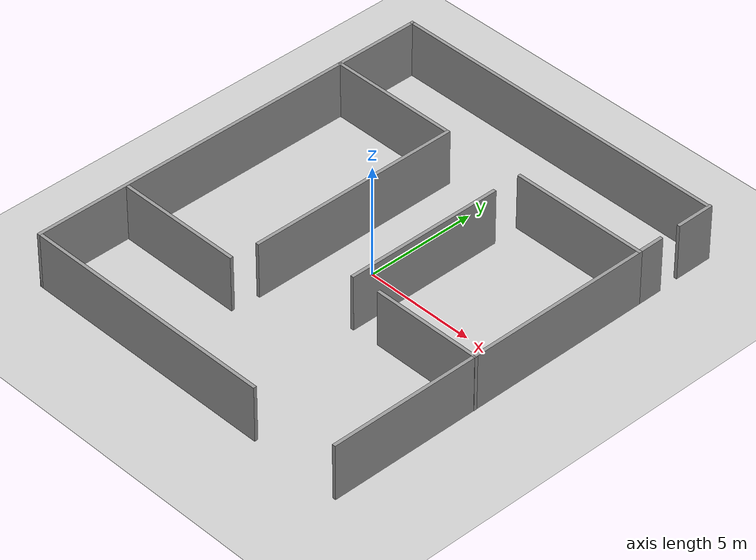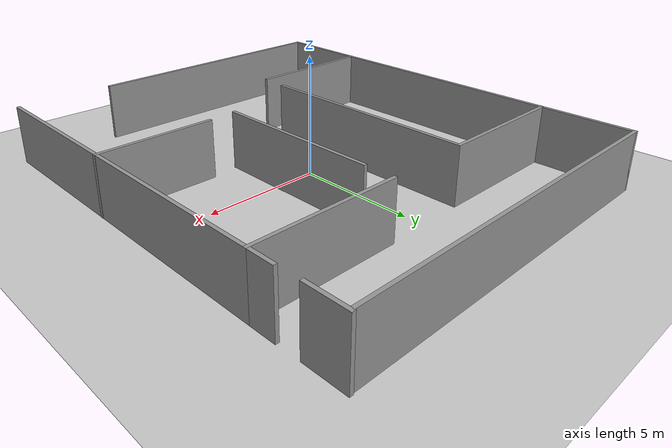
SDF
<sdf version="1.7">
 <world name="default">
  <light name="sun" type="directional">
   <pose>0 0 10 0 -0 0</pose>
   <diffuse>0.8 0.8 0.8 1</diffuse>
   <specular>0.2 0.2 0.2 1</specular>
   <attenuation>
    <range>1000</range>
    <constant>0.9</constant>
    <linear>0.01</linear>
    <quadratic>0.001</quadratic>
   </attenuation>
   <direction>-0.5 0.1 -0.9</direction>
   <spot><inner_angle>0</inner_angle><outer_angle>0</outer_angle><falloff>0</falloff></spot>
  </light>
  <model name="ground_plane">
   <static>1</static>
   <link name="link">
    <collision name="collision">
     <geometry><plane><normal>0 0 1</normal><size>100 100</size></plane></geometry>
     <surface>
      <contact><collide_bitmask>65535</collide_bitmask></contact>
      <friction><ode><mu>100</mu><mu2>50</mu2></ode></friction>
     </surface>
    </collision>
    <visual name="visual">
     <cast_shadows>0</cast_shadows>
     <geometry><plane><normal>0 0 1</normal><size>100 100</size></plane></geometry>
     <material>
      <script><uri>file://media/materials/scripts/gazebo.material</uri><name>Gazebo/Grey</name></script>
     </material>
    </visual>
   </link>
  </model>
  <gravity>0 0 -9.8</gravity>
  <magnetic_field>6e-06 2.3e-05 -4.2e-05</magnetic_field>
  <atmosphere type="adiabatic"/>
  <physics type="ode">
   <max_step_size>0.001</max_step_size>
   <real_time_factor>1</real_time_factor>
   <real_time_update_rate>1000</real_time_update_rate>
  </physics>
  <scene><ambient>0.4 0.4 0.4 1</ambient><background>0.7 0.7 0.7 1</background><shadows>1</shadows></scene>
  <audio><device>default</device></audio>
  <spherical_coordinates>
   <surface_model>EARTH_WGS84</surface_model>
   <latitude_deg>0</latitude_deg>
   <longitude_deg>0</longitude_deg>
   <elevation>0</elevation>
   <heading_deg>0</heading_deg>
  </spherical_coordinates>
  <model name="Untitled11">
   <pose>0.017001 0.185395 0 0 -0 0</pose>
   <link name="Wall_12">
    <collision name="Wall_12_Collision">
     <geometry><box><size>6 0.15 2.5</size></box></geometry>
     <pose>0 0 1.25 0 -0 0</pose>
    </collision>
    <visual name="Wall_12_Visual">
     <pose>0 0 1.25 0 -0 0</pose>
     <geometry><box><size>6 0.15 2.5</size></box></geometry>
     <material>
      <script><uri>file://media/materials/scripts/gazebo.material</uri><name>Gazebo/Grey</name></script>
      <ambient>1 1 1 1</ambient>
     </material>
     <meta><layer>0</layer></meta>
    </visual>
    <pose>-4.91762 5.5704 0 0 -0 0</pose>
   </link>
   <link name="Wall_15">
    <collision name="Wall_15_Collision">
     <geometry><box><size>5.75 0.15 2.5</size></box></geometry>
     <pose>0 0 1.25 0 -0 0</pose>
    </collision>
    <visual name="Wall_15_Visual">
     <pose>0 0 1.25 0 -0 0</pose>
     <geometry><box><size>5.75 0.15 2.5</size></box></geometry>
     <material>
      <script><uri>file://media/materials/scripts/gazebo.material</uri><name>Gazebo/Grey</name></script>
      <ambient>1 1 1 1</ambient>
     </material>
     <meta><layer>0</layer></meta>
    </visual>
    <pose>-4.92392 -5.28995 0 0 -0 0</pose>
   </link>
   <link name="Wall_17">
    <collision name="Wall_17_Collision">
     <geometry><box><size>9.75 0.15 2.5</size></box></geometry>
     <pose>0 0 1.25 0 -0 0</pose>
    </collision>
    <visual name="Wall_17_Visual">
     <pose>0 0 1.25 0 -0 0</pose>
     <geometry><box><size>9.75 0.15 2.5</size></box></geometry>
     <material>
      <script><uri>file://media/materials/scripts/gazebo.material</uri><name>Gazebo/Grey</name></script>
      <ambient>1 1 1 1</ambient>
     </material>
     <meta><layer>0</layer></meta>
    </visual>
    <pose>-1.99262 0.770397 0 0 -0 -1.5708</pose>
   </link>
   <link name="Wall_21">
    <collision name="Wall_21_Collision">
     <geometry><box><size>6.25 0.15 2.5</size></box></geometry>
     <pose>0 0 1.25 0 -0 0</pose>
    </collision>
    <visual name="Wall_21_Visual">
     <pose>0 0 1.25 0 -0 0</pose>
     <geometry><box><size>6.25 0.15 2.5</size></box></geometry>
     <material>
      <script><uri>file://media/materials/scripts/gazebo.material</uri><name>Gazebo/Grey</name></script>
      <ambient>1 1 1 1</ambient>
     </material>
     <meta><layer>0</layer></meta>
    </visual>
    <pose>4.82224 5.66642 0 0 -0 0</pose>
   </link>
   <link name="Wall_23">
    <collision name="Wall_23_Collision">
     <geometry><box><size>7.25 0.15 2.5</size></box></geometry>
     <pose>0 0 1.25 0 -0 0</pose>
    </collision>
    <visual name="Wall_23_Visual">
     <pose>0 0 1.25 0 -0 0</pose>
     <geometry><box><size>7.25 0.15 2.5</size></box></geometry>
     <material>
      <script><uri>file://media/materials/scripts/gazebo.material</uri><name>Gazebo/Grey</name></script>
      <ambient>1 1 1 1</ambient>
     </material>
     <meta><layer>0</layer></meta>
    </visual>
    <pose>1.73241 0.753947 0 0 -0 -1.5708</pose>
   </link>
   <link name="Wall_25">
    <collision name="Wall_25_Collision">
     <geometry><box><size>5 0.15 2.5</size></box></geometry>
     <pose>0 0 1.25 0 -0 0</pose>
    </collision>
    <visual name="Wall_25_Visual">
     <pose>0 0 1.25 0 -0 0</pose>
     <geometry><box><size>5 0.15 2.5</size></box></geometry>
     <material>
      <script><uri>file://media/materials/scripts/gazebo.material</uri><name>Gazebo/Grey</name></script>
      <ambient>1 1 1 1</ambient>
     </material>
     <meta><layer>0</layer></meta>
    </visual>
    <pose>5.45918 -2.72222 0 0 -0 0</pose>
   </link>
   <link name="Wall_29">
    <collision name="Wall_29_Collision">
     <geometry><box><size>15.25 0.15 2.5</size></box></geometry>
     <pose>0 0 1.25 0 -0 0</pose>
    </collision>
    <visual name="Wall_29_Visual">
     <pose>0 0 1.25 0 -0 0</pose>
     <geometry><box><size>15.25 0.15 2.5</size></box></geometry>
     <material>
      <script><uri>file://media/materials/scripts/gazebo.material</uri><name>Gazebo/Grey</name></script>
      <ambient>1 1 1 1</ambient>
     </material>
     <meta><layer>0</layer></meta>
    </visual>
    <pose>7.87225 -1.88358 0 0 -0 -1.5708</pose>
   </link>
   <link name="Wall_32">
    <collision name="Wall_32_Collision">
     <geometry><box><size>1.25 0.15 2.5</size></box></geometry>
     <pose>0 0 1.25 0 -0 0</pose>
    </collision>
    <visual name="Wall_32_Visual">
     <pose>0 0 1.25 0 -0 0</pose>
     <geometry><box><size>1.25 0.15 2.5</size></box></geometry>
     <material>
      <script><uri>file://media/materials/scripts/gazebo.material</uri><name>Gazebo/Grey</name></script>
      <ambient>1 1 1 1</ambient>
     </material>
     <meta><layer>0</layer></meta>
    </visual>
    <pose>7.87225 6.21642 0 0 -0 1.5708</pose>
   </link>
   <link name="Wall_36">
    <collision name="Wall_36_Collision">
     <geometry><box><size>1.75 0.15 2.5</size></box></geometry>
     <pose>0 0 1.25 0 -0 0</pose>
    </collision>
    <visual name="Wall_36_Visual">
     <pose>0 0 1.25 0 -0 0</pose>
     <geometry><box><size>1.75 0.15 2.5</size></box></geometry>
     <material>
      <script><uri>file://media/materials/scripts/gazebo.material</uri><name>Gazebo/Grey</name></script>
      <ambient>1 1 1 1</ambient>
     </material>
     <meta><layer>0</layer></meta>
    </visual>
    <pose>7.83228 8.64258 0 0 -0 1.5708</pose>
   </link>
   <link name="Wall_6">
    <collision name="Wall_6_Collision">
     <geometry><box><size>11.75 0.15 2.5</size></box></geometry>
     <pose>0 0 1.25 0 -0 0</pose>
    </collision>
    <visual name="Wall_6_Visual">
     <pose>0 0 1.25 0 -0 0</pose>
     <geometry><box><size>11.75 0.15 2.5</size></box></geometry>
     <material>
      <script><uri>file://media/materials/scripts/gazebo.material</uri><name>Gazebo/Grey</name></script>
      <ambient>1 1 1 1</ambient>
     </material>
     <meta><layer>0</layer></meta>
    </visual>
    <pose>-2.08418 -9.44258 0 0 -0 0</pose>
   </link>
   <link name="Wall_8">
    <collision name="Wall_8_Collision">
     <geometry><box><size>19 0.15 2.5</size></box></geometry>
     <pose>0 0 1.25 0 -0 0</pose>
    </collision>
    <visual name="Wall_8_Visual">
     <pose>0 0 1.25 0 -0 0</pose>
     <geometry><box><size>19 0.15 2.5</size></box></geometry>
     <material>
      <script><uri>file://media/materials/scripts/gazebo.material</uri><name>Gazebo/Grey</name></script>
      <ambient>1 1 1 1</ambient>
     </material>
     <meta><layer>0</layer></meta>
    </visual>
    <pose>-7.88418 -0.017578 0 0 -0 1.5708</pose>
   </link>
   <link name="Wall_9">
    <collision name="Wall_9_Collision">
     <geometry><box><size>15.75 0.15 2.5</size></box></geometry>
     <pose>0 0 1.25 0 -0 0</pose>
    </collision>
    <visual name="Wall_9_Visual">
     <pose>0 0 1.25 0 -0 0</pose>
     <geometry><box><size>15.75 0.15 2.5</size></box></geometry>
     <material>
      <script><uri>file://media/materials/scripts/gazebo.material</uri><name>Gazebo/Grey</name></script>
      <ambient>1 1 1 1</ambient>
     </material>
     <meta><layer>0</layer></meta>
    </visual>
    <pose>-0.084182 9.40742 0 0 -0 0</pose>
   </link>
   <static>1</static>
  </model>
 </world>
</sdf>
